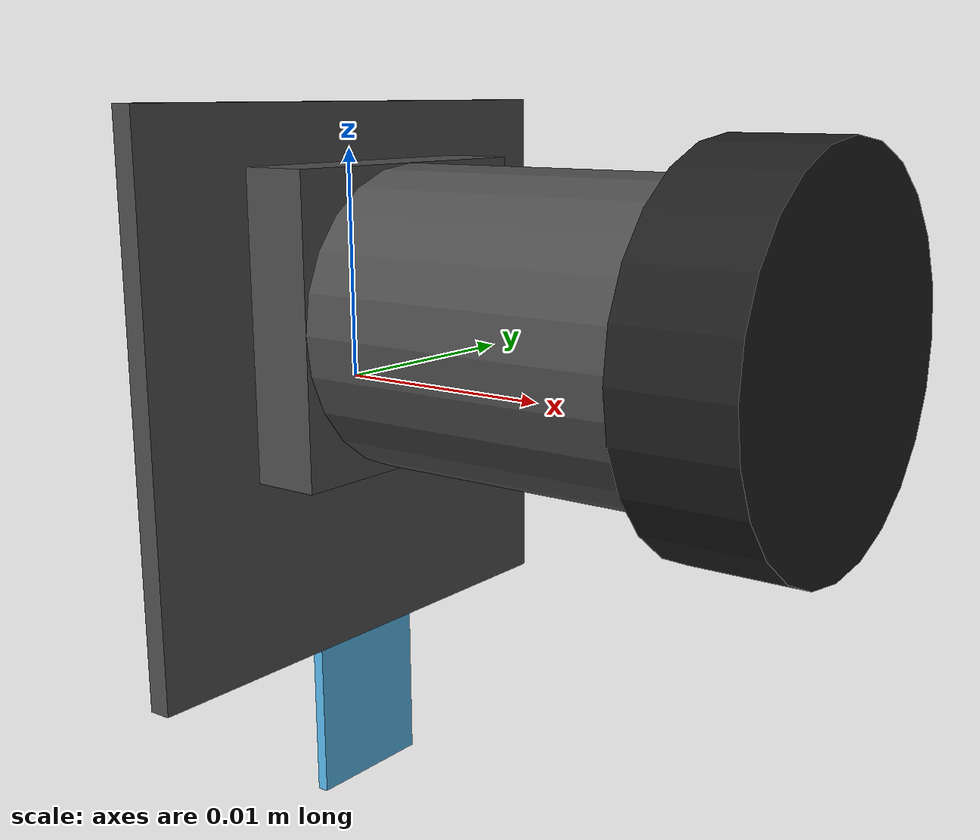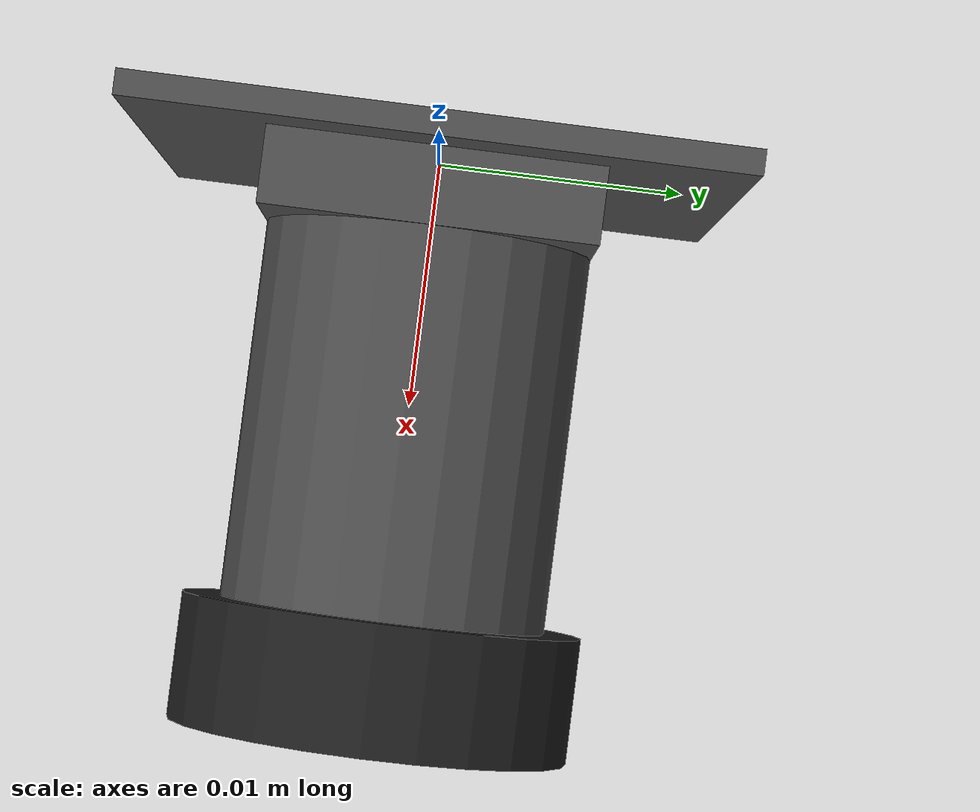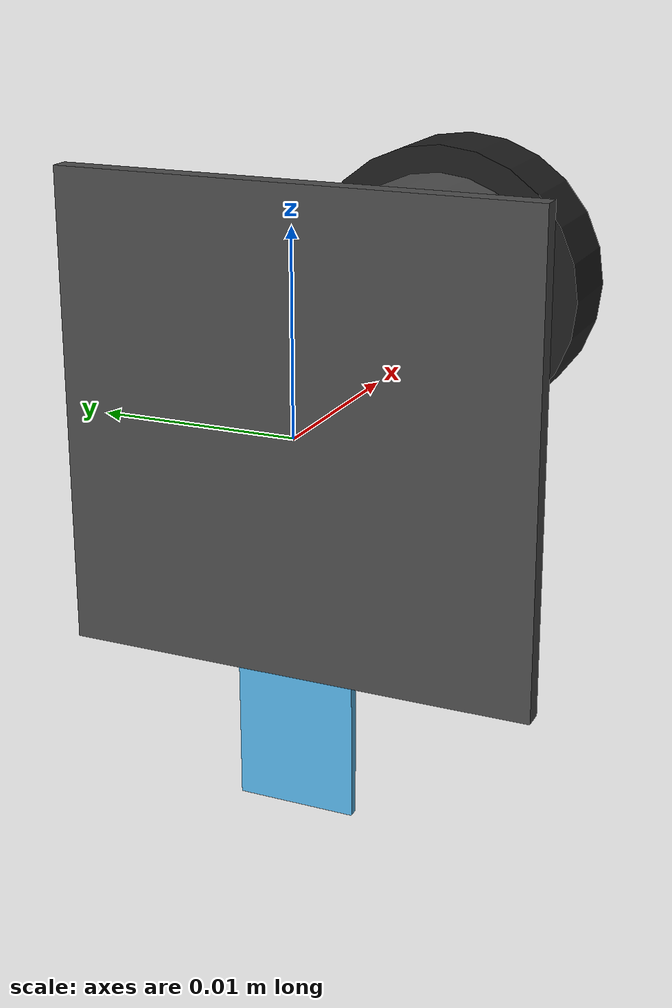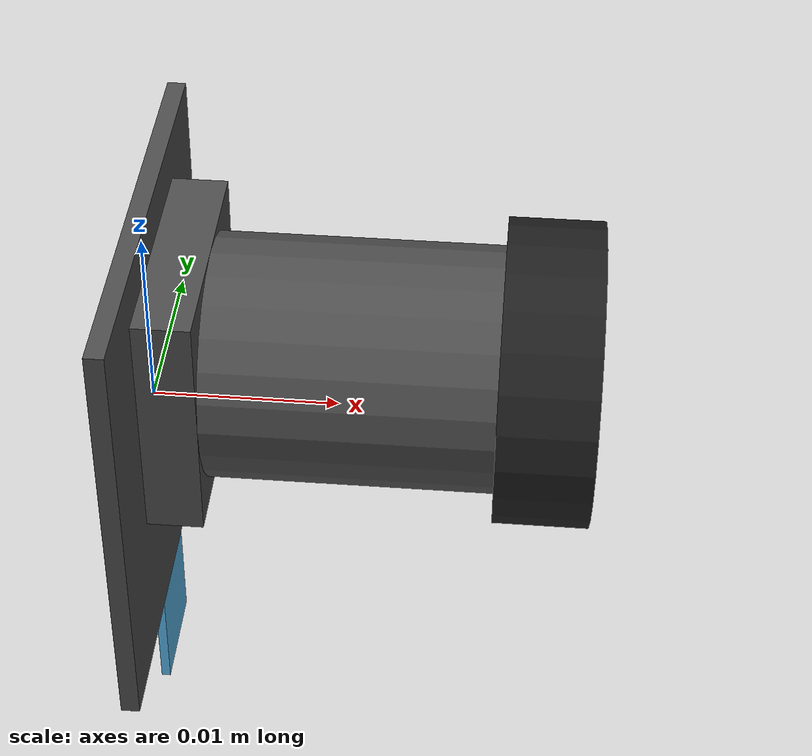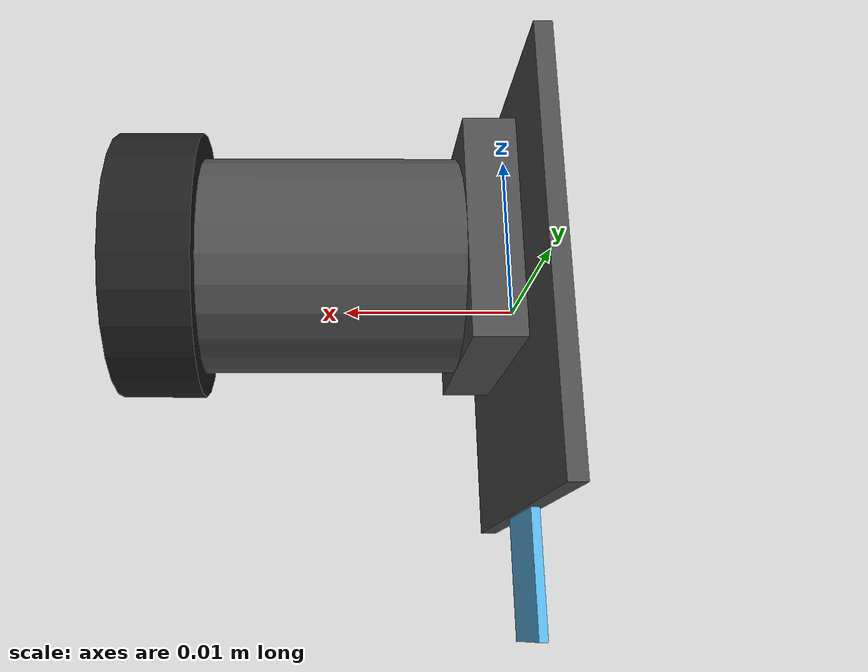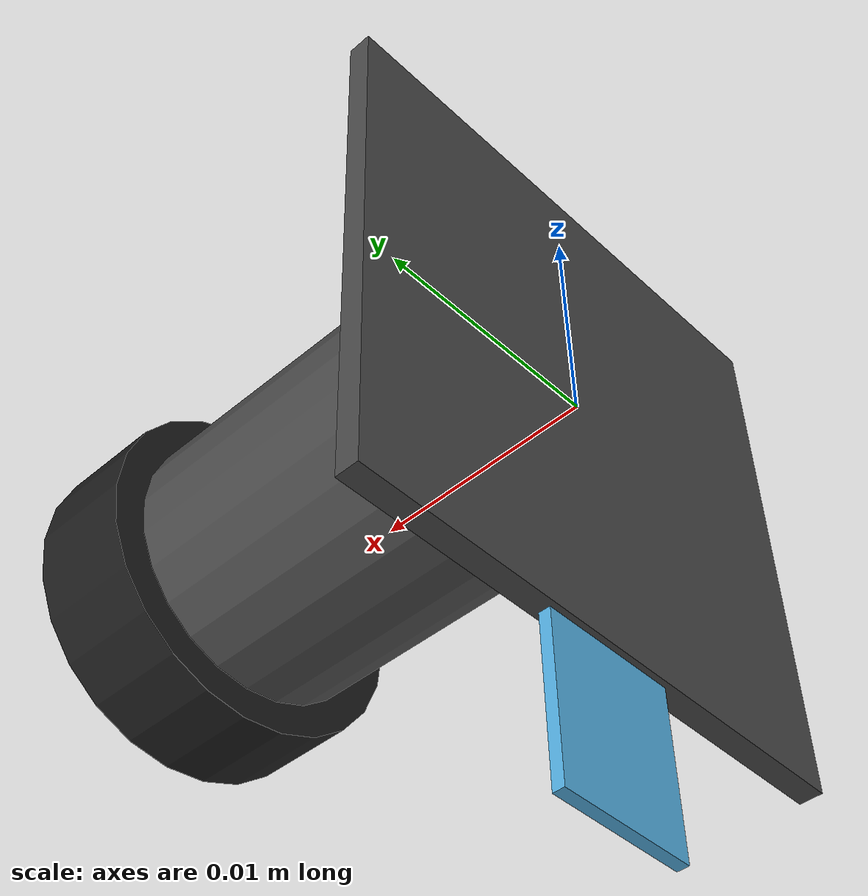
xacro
<?xml version="1.0"?>
<robot xmlns:xacro="http://ros.org/wiki/xacro">

  <link name="camera_link">
      <visual>
          <geometry>
              <box size="0.001 0.024 0.024"/>
          </geometry>
          <origin xyz="0 0 0" rpy="0 0 0"/>
          <material name="dark_gray"/>
      </visual>
      <collision>
          <geometry>
              <box size="0.001 0.024 0.024"/>
          </geometry>
          <origin xyz="0 0 0" rpy="0 0 0"/>
      </collision>
      <visual>
          <geometry>
              <box size="0.003 0.013 0.013"/>
          </geometry>
          <origin xyz="0.002 0 0.003" rpy="0 0 0"/>
          <material name="dark_gray"/>
      </visual>
      <collision>
          <geometry>
              <box size="0.003 0.013 0.013"/>
          </geometry>
          <origin xyz="0.002 0 0.003" rpy="0 0 0"/>
      </collision>
      <visual>
          <geometry>
              <cylinder radius="0.0065" length="0.015"/>
          </geometry>
          <origin xyz="0.011 0 0.003" rpy="0 1.57 0"/>
          <material name="dark_gray"/>
      </visual>
      <collision>
          <geometry>
              <cylinder radius="0.0065" length="0.015"/>
          </geometry>
          <origin xyz="0.011 0 0.003" rpy="0 1.57 0"/>
      </collision>
      <visual>
          <geometry>
              <cylinder radius="0.008" length="0.005"/>
          </geometry>
          <origin xyz="0.021 0 0.003" rpy="0 1.57 0"/>
          <material name="black"/>
      </visual>
      <collision>
          <geometry>
              <cylinder radius="0.008" length="0.005"/>
          </geometry>
          <origin xyz="0.021 0 0.003" rpy="0 1.57 0"/>
      </collision>
      <inertial>
        <mass value="0.01"/>
        <origin xyz="0 0 0" rpy="0 0 0"/>
        <inertia ixx="1e-5" ixy="0" ixz="0" iyy="1e-5" iyz="0" izz="1e-5"/>
      </inertial>
  </link>
  <link name="support_camera_link">
      <visual>
          <geometry>
              <box size="0.0005 0.006 0.007"/>
          </geometry>
          <origin xyz="0 0 0" rpy="0 0 0"/>
          <material name="copper_colour"/>
      </visual>
      <collision>
          <geometry>
              <box size="0.0005 0.006 0.007"/>
          </geometry>
          <origin xyz="0 0 0" rpy="0 0 0"/>
      </collision>
  </link>
  <joint type="fixed" name="support_joint">
    <parent link="camera_link"/>
    <child link="support_camera_link"/>
    <origin xyz="0 0 -0.0155" rpy="0 0 0"/>

  </joint>

</robot>
